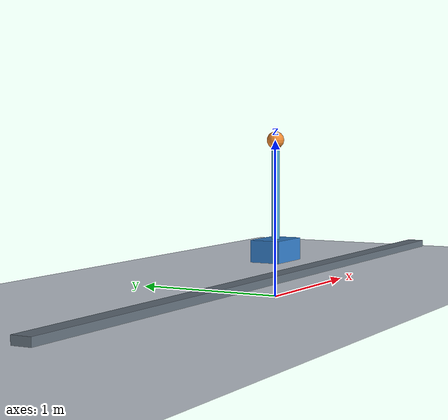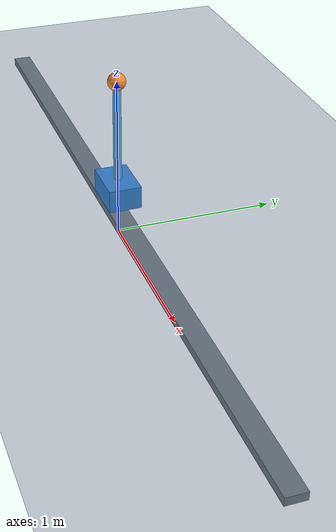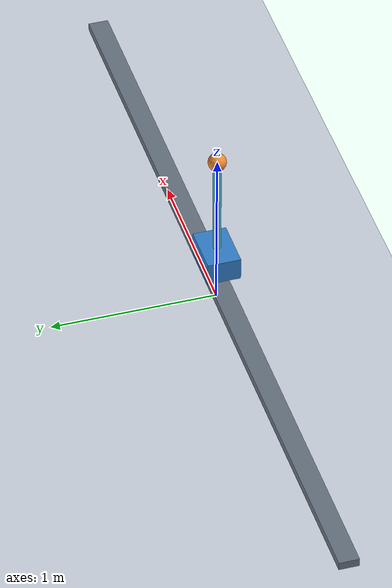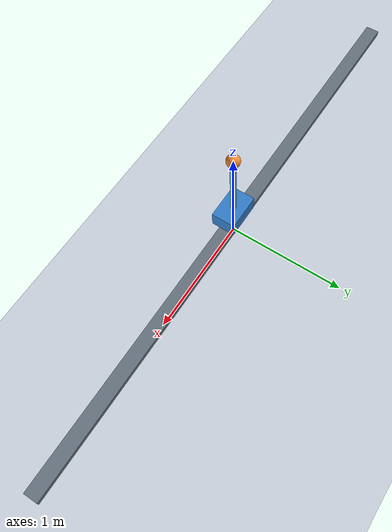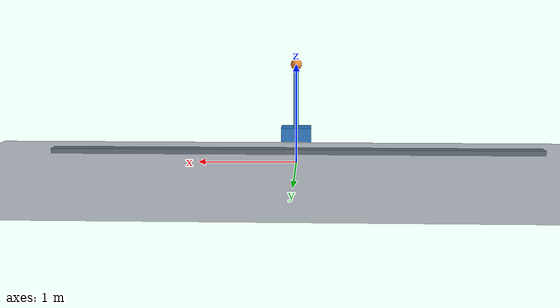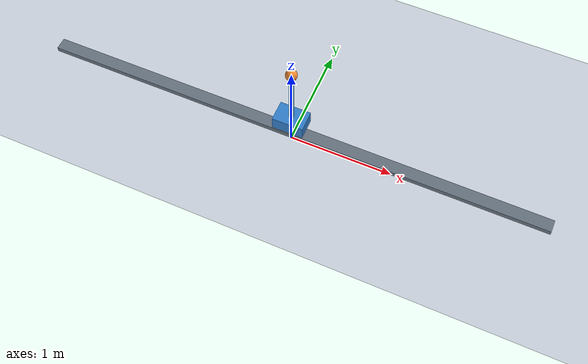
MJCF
<mujoco model="cartpole_pid"><option timestep="0.002" gravity="0 0 -9.81"/>
<visual><global offwidth="640" offheight="360"/></visual>
<worldbody><light pos="0 -2 4" ambient="0.5 0.5 0.5"/>
<geom type="plane" size="4 4 0.1" rgba="0.8 0.83 0.87 1"/>
<geom type="box" pos="0 0 0.12" size="2.5 0.06 0.025" rgba="0.4 0.45 0.5 1"/>
<body name="cart" pos="0 0 0.3"><joint name="slide" type="slide" axis="1 0 0" damping="0.1"/>
<geom type="box" size="0.15 0.1 0.07" mass="1" rgba="0.2 0.5 0.8 1" contype="0" conaffinity="0"/>
<body name="pole"><joint name="hinge" type="hinge" axis="0 1 0" damping="0.01"/>
<geom type="capsule" fromto="0 0 0 0 0 0.7" size="0.025" mass="0.15" rgba="0.3 0.65 0.8 1" contype="0" conaffinity="0"/>
<geom type="sphere" pos="0 0 0.7" size="0.055" mass="0.05" rgba="0.95 0.55 0.2 1" contype="0" conaffinity="0"/>
</body></body></worldbody><actuator><motor joint="slide" gear="1" ctrllimited="true" ctrlrange="-8 8"/></actuator></mujoco>
